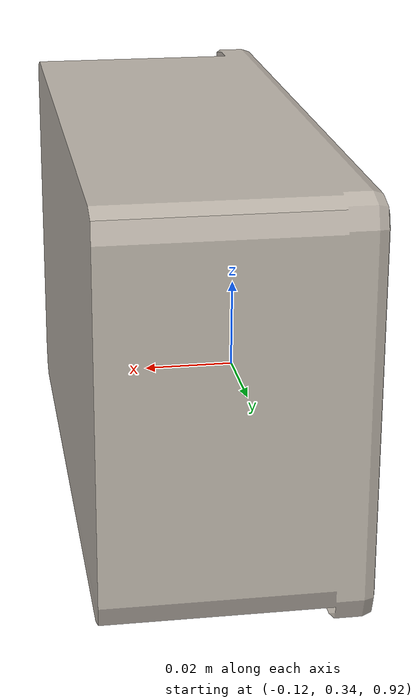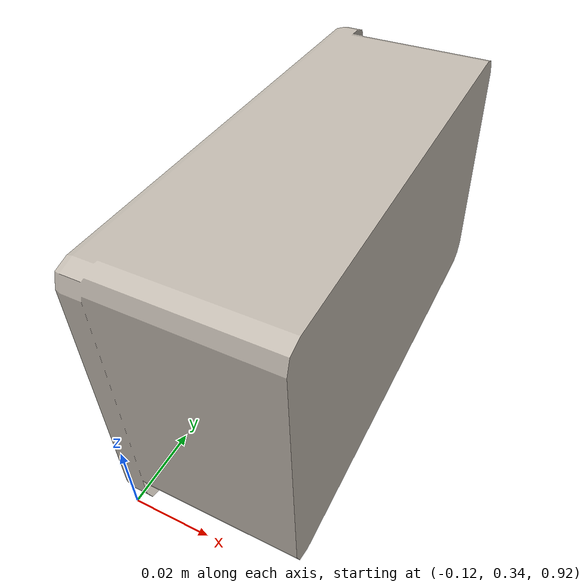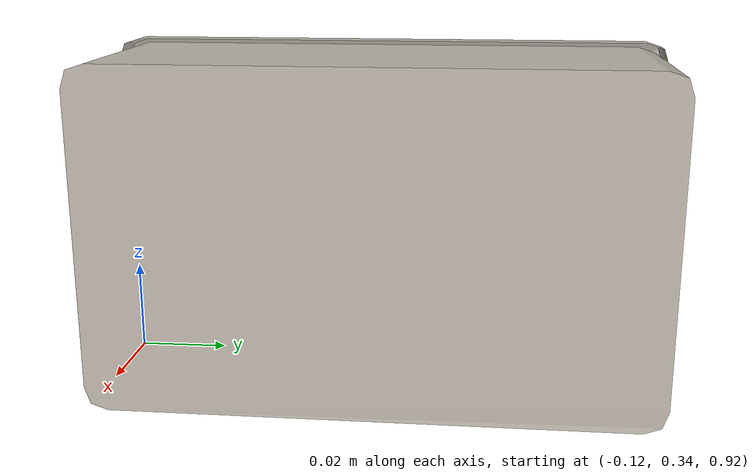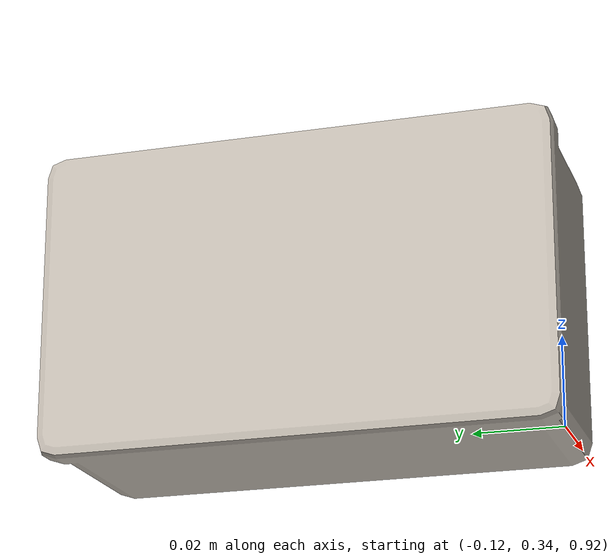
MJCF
<mujoco model="boxed_food_0">
  <asset>
    <mesh file="boxed_food_0/visual/model_normalized_0.obj" name="model_normalized_0_vis" scale="0.11999999999999995 0.11999999999999995 0.11999999999999995" refquat="0.7071067811865475 0.0 0.0 0.7071067811865476"/>
    <texture type="2d" name="image0" file="boxed_food_0/visual/image0.png"/>
    <material name="auto" texture="image0" specular="0.5" shininess="1.0"/>
  </asset>
  <worldbody>
      <body name="boxed_food_0" pos="-0.1 0.4 0.958">
        <freejoint name="boxed_food_0_freejoint"/>
        <geom solimp="0.998 0.998 0.001" type="mesh" mesh="model_normalized_0_vis" conaffinity="0" contype="0" group="1" material="auto"/>
        <!-- 简化后的box碰撞体 -->
        <geom type="box" size="0.024 0.073 0.044" pos="0.004 0 0" group="0" mass="0.1"  rgba="0 0 0 0"/>
        <geom type="box" size="0.004 0.0747 0.045" pos="-0.024 0 0" group="0" mass="0.1" rgba="0 0 0 0"/>
      </body>
  </worldbody>
</mujoco>
